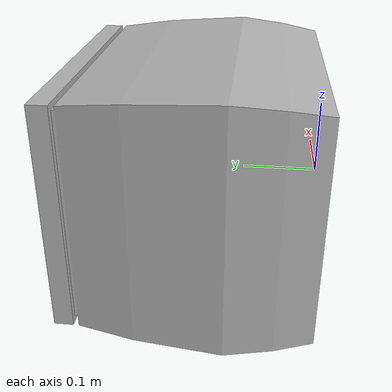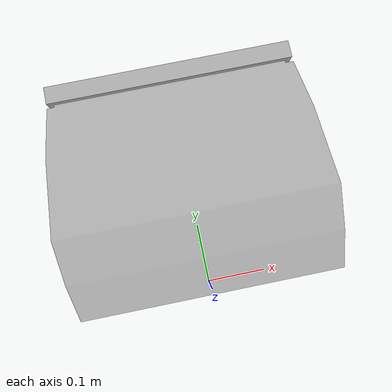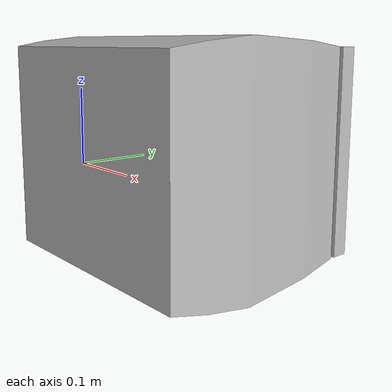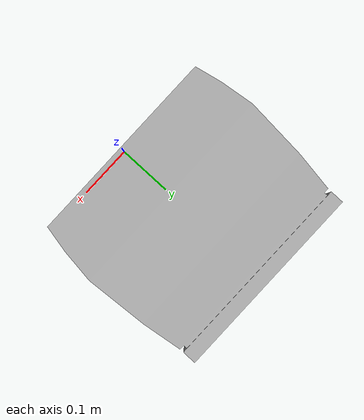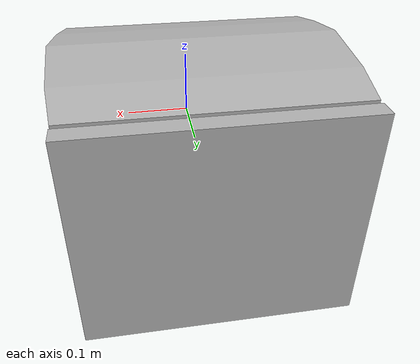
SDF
<?xml version="1.0" ?>
<sdf version="1.4">
  <model name="shelf3_basket3">
    <link name="body">
      <pose>0 0 0 0 0 0</pose>
      <inertial>
        <pose>  -0.001000   0.172653  -0.000000 0 0 0</pose>
        <mass>0.5</mass>
        <inertia>
          <ixx>0.01</ixx>
          <ixy>0</ixy>
          <ixz>0</ixz>
          <iyy>0.01</iyy>
          <iyz>0</iyz>
          <izz>0.01</izz>
        </inertia>
      </inertial>
      <collision name="collision">
        <geometry>
          <mesh>
            <uri>model://bookshelf/shelf3_items/basket3/basket3.dae</uri>
          </mesh>
        </geometry>
      </collision>
      <visual name="visual">
        <geometry>
          <mesh>
            <uri>model://bookshelf/shelf3_items/basket3/basket3.dae</uri>
          </mesh>
        </geometry>
      </visual>
    </link>
  </model>
</sdf>
